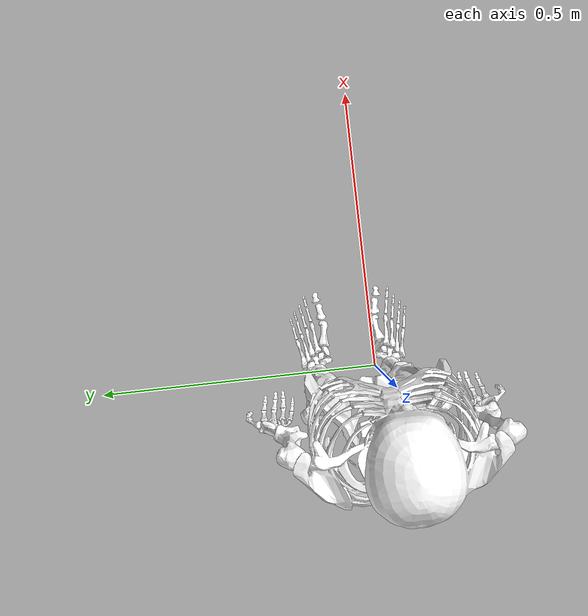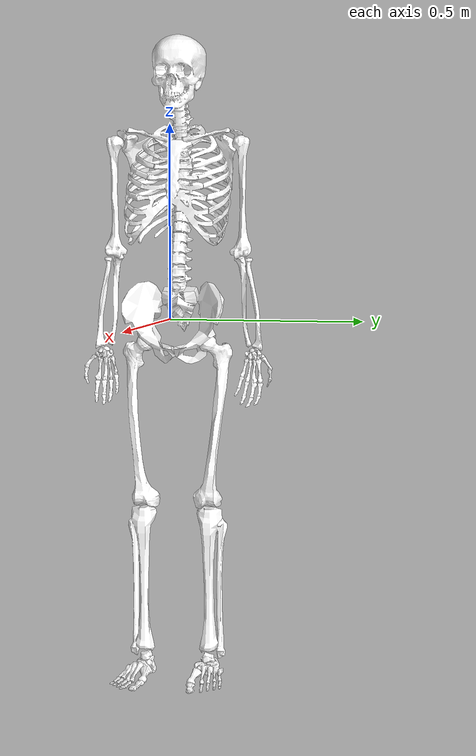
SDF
<?xml version="1.0"?>
<!-- created with Phobos 0.7 -->
<sdf version="1.5">
  <model name="human">
    <link name="calcn_l">
      <pose>-0.1239698529 0.0914200023 -0.9338706732 0 0 0</pose>
      <inertial>
        <mass>1.25</mass>
        <inertia>
          <ixx>0.0014</ixx>
          <ixy>0</ixy>
          <ixz>0</ixz>
          <iyy>0.0038999999</iyy>
          <iyz>0</iyz>
          <izz>0.0041</izz>
        </inertia>
        <pose>0 0 0 0 0 0</pose>
      </inertial>
      <collision name="calcn_l_collision">
        <pose>0 0 0 0 0 0</pose>
        <geometry>
          <mesh>
            <uri>../meshes/obj/Calcn L.001.obj</uri>
            <scale>1.0 1.0 1.0</scale>
          </mesh>
        </geometry>
      </collision>
      <visual name="calcn_l_visual">
        <pose>0.0 0.0 0.0 0.0 -0.0 0.0</pose>
        <material>
          <ambient>1.0 1.0 1.0 0</ambient>
          <diffuse>1.0 1.0 1.0 0</diffuse>
          <specular>0.5 0.5 0.5 1.0</specular>
        </material>
        <geometry>
          <mesh>
            <uri>../meshes/obj/Calcn L.obj</uri>
            <scale>1.0 1.0 1.0</scale>
          </mesh>
        </geometry>
      </visual>
    </link>
    <link name="calcn_r">
      <pose>-0.1239698529 -0.0914200023 -0.9338706732 0 0 0</pose>
      <inertial>
        <mass>1.25</mass>
        <inertia>
          <ixx>0.0014</ixx>
          <ixy>0</ixy>
          <ixz>0</ixz>
          <iyy>0.0038999999</iyy>
          <iyz>0</iyz>
          <izz>0.0041</izz>
        </inertia>
        <pose>0 0 0 0 0 0</pose>
      </inertial>
      <collision name="calcn_r_collision">
        <pose>0 0 0 0 0 0</pose>
        <geometry>
          <mesh>
            <uri>../meshes/obj/Calcn R.001.obj</uri>
            <scale>1.0 1.0 1.0</scale>
          </mesh>
        </geometry>
      </collision>
      <visual name="calcn_r_visual">
        <pose>0.0 0.0 0.0 0.0 -0.0 0.0</pose>
        <material>
          <ambient>1.0 1.0 1.0 0</ambient>
          <diffuse>1.0 1.0 1.0 0</diffuse>
          <specular>0.5 0.5 0.5 1.0</specular>
        </material>
        <geometry>
          <mesh>
            <uri>../meshes/obj/Calcn R.obj</uri>
            <scale>1.0 1.0 1.0</scale>
          </mesh>
        </geometry>
      </visual>
    </link>
    <link name="femur_l">
      <pose>-0.0706999972 0.0834999979 -0.0661000013 0 0 0</pose>
      <inertial>
        <mass>9.3014</mass>
        <inertia>
          <ixx>0.1339000016</ixx>
          <ixy>0</ixy>
          <ixz>0</ixz>
          <iyy>0.0351000018</iyy>
          <iyz>0</iyz>
          <izz>0.141200006</izz>
        </inertia>
        <pose>0 0 0 0 0 0</pose>
      </inertial>
      <collision name="femur_l_collision">
        <pose>0 0 0 0 0 0</pose>
        <geometry>
          <mesh>
            <uri>../meshes/obj/Femur L.001.obj</uri>
            <scale>1.0 1.0 1.0</scale>
          </mesh>
        </geometry>
      </collision>
      <visual name="femur_l_visual">
        <pose>0.0 0.0 0.0 0.0 -0.0 0.0</pose>
        <material>
          <ambient>1.0 1.0 1.0 0</ambient>
          <diffuse>1.0 1.0 1.0 0</diffuse>
          <specular>0.5 0.5 0.5 1.0</specular>
        </material>
        <geometry>
          <mesh>
            <uri>../meshes/obj/Femur L.obj</uri>
            <scale>1.0 1.0 1.0</scale>
          </mesh>
        </geometry>
      </visual>
    </link>
    <link name="femur_r">
      <pose>-0.0706999972 -0.0834999979 -0.0661000013 0 0 0</pose>
      <inertial>
        <mass>9.3014</mass>
        <inertia>
          <ixx>0.1339000016</ixx>
          <ixy>0</ixy>
          <ixz>0</ixz>
          <iyy>0.0351000018</iyy>
          <iyz>0</iyz>
          <izz>0.141200006</izz>
        </inertia>
        <pose>0 0 0 0 0 0</pose>
      </inertial>
      <collision name="femur_r_collision">
        <pose>0 0 0 0 0 0</pose>
        <geometry>
          <mesh>
            <uri>../meshes/obj/Femur R.001.obj</uri>
            <scale>1.0 1.0 1.0</scale>
          </mesh>
        </geometry>
      </collision>
      <visual name="femur_r_visual">
        <pose>0.0 0.0 0.0 0.0 -0.0 0.0</pose>
        <material>
          <ambient>1.0 1.0 1.0 0</ambient>
          <diffuse>1.0 1.0 1.0 0</diffuse>
          <specular>0.5 0.5 0.5 1.0</specular>
        </material>
        <geometry>
          <mesh>
            <uri>../meshes/obj/Femur R.obj</uri>
            <scale>1.0 1.0 1.0</scale>
          </mesh>
        </geometry>
      </visual>
    </link>
    <link name="hand_l">
      <pose>-0.0999249965 0.200097993 -0.0821209997 0 0 0</pose>
      <inertial>
        <mass>0.4575</mass>
        <inertia>
          <ixx>0.000892</ixx>
          <ixy>0</ixy>
          <ixz>0</ixz>
          <iyy>0.000547</iyy>
          <iyz>0</iyz>
          <izz>0.00134</izz>
        </inertia>
        <pose>0 0 0 0 0 0</pose>
      </inertial>
      <collision name="hand_l_collision">
        <pose>0 0 0 0 0 0</pose>
        <geometry>
          <mesh>
            <uri>../meshes/obj/Hand L.001.obj</uri>
            <scale>1.0 1.0 1.0</scale>
          </mesh>
        </geometry>
      </collision>
      <visual name="hand_l_visual">
        <pose>0.0 0.0 0.0 0.0 -0.0 0.0</pose>
        <material>
          <ambient>1.0 1.0 1.0 0</ambient>
          <diffuse>1.0 1.0 1.0 0</diffuse>
          <specular>0.5 0.5 0.5 1.0</specular>
        </material>
        <geometry>
          <mesh>
            <uri>../meshes/obj/Hand L.obj</uri>
            <scale>1.0 1.0 1.0</scale>
          </mesh>
        </geometry>
      </visual>
    </link>
    <link name="hand_r">
      <pose>-0.0999249965 -0.200097993 -0.0821209997 0 0 0</pose>
      <inertial>
        <mass>0.4575</mass>
        <inertia>
          <ixx>0.000892</ixx>
          <ixy>0</ixy>
          <ixz>0</ixz>
          <iyy>0.000547</iyy>
          <iyz>0</iyz>
          <izz>0.00134</izz>
        </inertia>
        <pose>0 0 0 0 0 0</pose>
      </inertial>
      <collision name="hand_r_collision">
        <pose>0 0 0 0 0 0</pose>
        <geometry>
          <mesh>
            <uri>../meshes/obj/Hand R.001.obj</uri>
            <scale>1.0 1.0 1.0</scale>
          </mesh>
        </geometry>
      </collision>
      <visual name="hand_r_visual">
        <pose>0.0 0.0 0.0 0.0 -0.0 0.0</pose>
        <material>
          <ambient>1.0 1.0 1.0 0</ambient>
          <diffuse>1.0 1.0 1.0 0</diffuse>
          <specular>0.5 0.5 0.5 1.0</specular>
        </material>
        <geometry>
          <mesh>
            <uri>../meshes/obj/Hand R.obj</uri>
            <scale>1.0 1.0 1.0</scale>
          </mesh>
        </geometry>
      </visual>
    </link>
    <link name="humerus_l">
      <pose>-0.0975449979 0.1700000018 0.4530000091 0 0 0</pose>
      <inertial>
        <mass>2.0325</mass>
        <inertia>
          <ixx>0.0119460002</ixx>
          <ixy>0</ixy>
          <ixz>0</ixz>
          <iyy>0.0041209999</iyy>
          <iyz>0</iyz>
          <izz>0.0134089999</izz>
        </inertia>
        <pose>0 0 0 0 0 0</pose>
      </inertial>
      <collision name="humerus_l_collision">
        <pose>0 0 0 0 0 0</pose>
        <geometry>
          <mesh>
            <uri>../meshes/obj/Humerus L.001.obj</uri>
            <scale>1.0 1.0 1.0</scale>
          </mesh>
        </geometry>
      </collision>
      <visual name="humerus_l_visual">
        <pose>0.0 0.0 0.0 0.0 -0.0 0.0</pose>
        <material>
          <ambient>1.0 1.0 1.0 0</ambient>
          <diffuse>1.0 1.0 1.0 0</diffuse>
          <specular>0.5 0.5 0.5 1.0</specular>
        </material>
        <geometry>
          <mesh>
            <uri>../meshes/obj/Humerus L.obj</uri>
            <scale>1.0 1.0 1.0</scale>
          </mesh>
        </geometry>
      </visual>
    </link>
    <link name="humerus_r">
      <pose>-0.0975449979 -0.1700000018 0.4530000091 0 0 0</pose>
      <inertial>
        <mass>2.0325</mass>
        <inertia>
          <ixx>0.0119460002</ixx>
          <ixy>0</ixy>
          <ixz>0</ixz>
          <iyy>0.0041209999</iyy>
          <iyz>0</iyz>
          <izz>0.0134089999</izz>
        </inertia>
        <pose>0 0 0 0 0 0</pose>
      </inertial>
      <collision name="humerus_r_collision">
        <pose>0 0 0 0 0 0</pose>
        <geometry>
          <mesh>
            <uri>../meshes/obj/Humerus R.001.obj</uri>
            <scale>1.0 1.0 1.0</scale>
          </mesh>
        </geometry>
      </collision>
      <visual name="humerus_r_visual">
        <pose>0.0 0.0 0.0 0.0 -0.0 0.0</pose>
        <material>
          <ambient>1.0 1.0 1.0 0</ambient>
          <diffuse>1.0 1.0 1.0 0</diffuse>
          <specular>0.5 0.5 0.5 1.0</specular>
        </material>
        <geometry>
          <mesh>
            <uri>../meshes/obj/Humerus R.obj</uri>
            <scale>1.0 1.0 1.0</scale>
          </mesh>
        </geometry>
      </visual>
    </link>
    <link name="pelvis">
      <pose>0 0 0 0 0 0</pose>
      <inertial>
        <mass>11.777</mass>
        <inertia>
          <ixx>0.1027999967</ixx>
          <ixy>0</ixy>
          <ixz>0</ixz>
          <iyy>0.0870999992</iyy>
          <iyz>0</iyz>
          <izz>0.0579000004</izz>
        </inertia>
        <pose>0 0 0 0 0 0</pose>
      </inertial>
      <collision name="pelvis_collision">
        <pose>0 0 0 0 0 0</pose>
        <geometry>
          <mesh>
            <uri>../meshes/obj/Pelvis.001.obj</uri>
            <scale>1.0 1.0 1.0</scale>
          </mesh>
        </geometry>
      </collision>
      <visual name="pelvis_visual">
        <pose>0.0 0.0 0.0 0.0 -0.0 0.0</pose>
        <material>
          <ambient>1.0 1.0 1.0 0</ambient>
          <diffuse>1.0 1.0 1.0 0</diffuse>
          <specular>0.5 0.5 0.5 1.0</specular>
        </material>
        <geometry>
          <mesh>
            <uri>../meshes/obj/Pelvis.obj</uri>
            <scale>1.0 1.0 1.0</scale>
          </mesh>
        </geometry>
      </visual>
    </link>
    <link name="radius_l">
      <pose>-0.0911279991 0.1864880025 0.1537200063 0 0 0</pose>
      <inertial>
        <mass>0.6075</mass>
        <inertia>
          <ixx>0.002962</ixx>
          <ixy>0</ixy>
          <ixz>0</ixz>
          <iyy>0.000618</iyy>
          <iyz>0</iyz>
          <izz>0.003213</izz>
        </inertia>
        <pose>0 0 0 0 0 0</pose>
      </inertial>
      <collision name="radius_l_collision">
        <pose>0 0 0 0 0 0</pose>
        <geometry>
          <mesh>
            <uri>../meshes/obj/Radius L.001.obj</uri>
            <scale>1.0 1.0 1.0</scale>
          </mesh>
        </geometry>
      </collision>
      <visual name="radius_l_visual">
        <pose>0.0 0.0 0.0 0.0 -0.0 0.0</pose>
        <material>
          <ambient>1.0 1.0 1.0 0</ambient>
          <diffuse>1.0 1.0 1.0 0</diffuse>
          <specular>0.5 0.5 0.5 1.0</specular>
        </material>
        <geometry>
          <mesh>
            <uri>../meshes/obj/Radius L.obj</uri>
            <scale>1.0 1.0 1.0</scale>
          </mesh>
        </geometry>
      </visual>
    </link>
    <link name="radius_r">
      <pose>-0.0911279991 -0.1864880025 0.1537200063 0 0 0</pose>
      <inertial>
        <mass>0.6075</mass>
        <inertia>
          <ixx>0.002962</ixx>
          <ixy>0</ixy>
          <ixz>0</ixz>
          <iyy>0.000618</iyy>
          <iyz>0</iyz>
          <izz>0.003213</izz>
        </inertia>
        <pose>0 0 0 0 0 0</pose>
      </inertial>
      <collision name="radius_r_collision">
        <pose>0 0 0 0 0 0</pose>
        <geometry>
          <mesh>
            <uri>../meshes/obj/Radius R.001.obj</uri>
            <scale>1.0 1.0 1.0</scale>
          </mesh>
        </geometry>
      </collision>
      <visual name="radius_r_visual">
        <pose>0.0 0.0 0.0 0.0 -0.0 0.0</pose>
        <material>
          <ambient>1.0 1.0 1.0 0</ambient>
          <diffuse>1.0 1.0 1.0 0</diffuse>
          <specular>0.5 0.5 0.5 1.0</specular>
        </material>
        <geometry>
          <mesh>
            <uri>../meshes/obj/Radius R.obj</uri>
            <scale>1.0 1.0 1.0</scale>
          </mesh>
        </geometry>
      </visual>
    </link>
    <link name="talus_l">
      <pose>-0.0751998574 0.0834999979 -0.8919206858 0 0 0</pose>
      <inertial>
        <mass>0.1</mass>
        <inertia>
          <ixx>0.001</ixx>
          <ixy>0</ixy>
          <ixz>0</ixz>
          <iyy>0.001</iyy>
          <iyz>0</iyz>
          <izz>0.001</izz>
        </inertia>
        <pose>0 0 0 0 0 0</pose>
      </inertial>
      <collision name="talus_l_collision">
        <pose>0 0 0 0 0 0</pose>
        <geometry>
          <mesh>
            <uri>../meshes/obj/Talus L.001.obj</uri>
            <scale>1.0 1.0 1.0</scale>
          </mesh>
        </geometry>
      </collision>
      <visual name="talus_l_visual">
        <pose>0.0 0.0 0.0 0.0 -0.0 0.0</pose>
        <material>
          <ambient>1.0 1.0 1.0 0</ambient>
          <diffuse>1.0 1.0 1.0 0</diffuse>
          <specular>0.5 0.5 0.5 1.0</specular>
        </material>
        <geometry>
          <mesh>
            <uri>../meshes/obj/Talus L.obj</uri>
            <scale>1.0 1.0 1.0</scale>
          </mesh>
        </geometry>
      </visual>
    </link>
    <link name="talus_r">
      <pose>-0.0751998574 -0.0834999979 -0.8919206858 0 0 0</pose>
      <inertial>
        <mass>0.1</mass>
        <inertia>
          <ixx>0.001</ixx>
          <ixy>0</ixy>
          <ixz>0</ixz>
          <iyy>0.001</iyy>
          <iyz>0</iyz>
          <izz>0.001</izz>
        </inertia>
        <pose>0 0 0 0 0 0</pose>
      </inertial>
      <collision name="talus_r_collision">
        <pose>0 0 0 0 0 0</pose>
        <geometry>
          <mesh>
            <uri>../meshes/obj/Talus R.001.obj</uri>
            <scale>1.0 1.0 1.0</scale>
          </mesh>
        </geometry>
      </collision>
      <visual name="talus_r_visual">
        <pose>0.0 0.0 0.0 0.0 -0.0 0.0</pose>
        <material>
          <ambient>1.0 1.0 1.0 0</ambient>
          <diffuse>1.0 1.0 1.0 0</diffuse>
          <specular>0.5 0.5 0.5 1.0</specular>
        </material>
        <geometry>
          <mesh>
            <uri>../meshes/obj/Talus R.obj</uri>
            <scale>1.0 1.0 1.0</scale>
          </mesh>
        </geometry>
      </visual>
    </link>
    <link name="tibia_l">
      <pose>-0.0751998574 0.0834999979 -0.4619207084 0 0 0</pose>
      <inertial>
        <mass>3.7075</mass>
        <inertia>
          <ixx>0.0504000001</ixx>
          <ixy>0</ixy>
          <ixz>0</ixz>
          <iyy>0.0051000002</iyy>
          <iyz>0</iyz>
          <izz>0.0511000007</izz>
        </inertia>
        <pose>0 0 0 0 0 0</pose>
      </inertial>
      <collision name="tibia_l_collision">
        <pose>0 0 0 0 0 0</pose>
        <geometry>
          <mesh>
            <uri>../meshes/obj/Tibia L.001.obj</uri>
            <scale>1.0 1.0 1.0</scale>
          </mesh>
        </geometry>
      </collision>
      <visual name="tibia_l_visual">
        <pose>0.0 0.0 0.0 0.0 -0.0 0.0</pose>
        <material>
          <ambient>1.0 1.0 1.0 0</ambient>
          <diffuse>1.0 1.0 1.0 0</diffuse>
          <specular>0.5 0.5 0.5 1.0</specular>
        </material>
        <geometry>
          <mesh>
            <uri>../meshes/obj/Tibia L.obj</uri>
            <scale>1.0 1.0 1.0</scale>
          </mesh>
        </geometry>
      </visual>
    </link>
    <link name="tibia_r">
      <pose>-0.0751998574 -0.0834999979 -0.4619207084 0 0 0</pose>
      <inertial>
        <mass>3.7075</mass>
        <inertia>
          <ixx>0.0504000001</ixx>
          <ixy>0</ixy>
          <ixz>0</ixz>
          <iyy>0.0051000002</iyy>
          <iyz>0</iyz>
          <izz>0.0511000007</izz>
        </inertia>
        <pose>0 0 0 0 0 0</pose>
      </inertial>
      <collision name="tibia_r_collision">
        <pose>0 0 0 0 0 0</pose>
        <geometry>
          <mesh>
            <uri>../meshes/obj/Tibia R.001.obj</uri>
            <scale>1.0 1.0 1.0</scale>
          </mesh>
        </geometry>
      </collision>
      <visual name="tibia_r_visual">
        <pose>0.0 0.0 0.0 0.0 -0.0 0.0</pose>
        <material>
          <ambient>1.0 1.0 1.0 0</ambient>
          <diffuse>1.0 1.0 1.0 0</diffuse>
          <specular>0.5 0.5 0.5 1.0</specular>
        </material>
        <geometry>
          <mesh>
            <uri>../meshes/obj/Tibia R.obj</uri>
            <scale>1.0 1.0 1.0</scale>
          </mesh>
        </geometry>
      </visual>
    </link>
    <link name="toes_l">
      <pose>0.0548301488 0.0925000012 -0.935870707 0 0 0</pose>
      <inertial>
        <mass>0.2166</mass>
        <inertia>
          <ixx>0.0001</ixx>
          <ixy>0</ixy>
          <ixz>0</ixz>
          <iyy>0.0002</iyy>
          <iyz>0</iyz>
          <izz>0.001</izz>
        </inertia>
        <pose>0 0 0 0 0 0</pose>
      </inertial>
      <collision name="toes_l_collision">
        <pose>0 0 0 0 0 0</pose>
        <geometry>
          <mesh>
            <uri>../meshes/obj/Toes L.001.obj</uri>
            <scale>1.0 1.0 1.0</scale>
          </mesh>
        </geometry>
      </collision>
      <visual name="toes_l_visual">
        <pose>0.0 0.0 0.0 0.0 -0.0 0.0</pose>
        <material>
          <ambient>1.0 1.0 1.0 0</ambient>
          <diffuse>1.0 1.0 1.0 0</diffuse>
          <specular>0.5 0.5 0.5 1.0</specular>
        </material>
        <geometry>
          <mesh>
            <uri>../meshes/obj/Toes L.obj</uri>
            <scale>1.0 1.0 1.0</scale>
          </mesh>
        </geometry>
      </visual>
    </link>
    <link name="toes_r">
      <pose>0.0548301488 -0.0925000012 -0.935870707 0 0 0</pose>
      <inertial>
        <mass>0.2166</mass>
        <inertia>
          <ixx>0.0001</ixx>
          <ixy>0</ixy>
          <ixz>0</ixz>
          <iyy>0.0002</iyy>
          <iyz>0</iyz>
          <izz>0.001</izz>
        </inertia>
        <pose>0 0 0 0 0 0</pose>
      </inertial>
      <collision name="toes_r_collision">
        <pose>0 0 0 0 0 0</pose>
        <geometry>
          <mesh>
            <uri>../meshes/obj/Toes R.001.obj</uri>
            <scale>1.0 1.0 1.0</scale>
          </mesh>
        </geometry>
      </collision>
      <visual name="toes_r_visual">
        <pose>0.0 0.0 0.0 0.0 -0.0 0.0</pose>
        <material>
          <ambient>1.0 1.0 1.0 0</ambient>
          <diffuse>1.0 1.0 1.0 0</diffuse>
          <specular>0.5 0.5 0.5 1.0</specular>
        </material>
        <geometry>
          <mesh>
            <uri>../meshes/obj/Toes R.obj</uri>
            <scale>1.0 1.0 1.0</scale>
          </mesh>
        </geometry>
      </visual>
    </link>
    <link name="torso">
      <pose>-0.1006999984 0 0.0815000013 0 0 0</pose>
      <inertial>
        <mass>26.8266</mass>
        <inertia>
          <ixx>1.4744999409</ixx>
          <ixy>0</ixy>
          <ixz>0</ixz>
          <iyy>0.7555000186</iyy>
          <iyz>0</iyz>
          <izz>1.4313999414</izz>
        </inertia>
        <pose>0 0 0 0 0 0</pose>
      </inertial>
      <collision name="torso_collision">
        <pose>0 0 0 0 0 0</pose>
        <geometry>
          <mesh>
            <uri>../meshes/obj/Torso.001.obj</uri>
            <scale>1.0 1.0 1.0</scale>
          </mesh>
        </geometry>
      </collision>
      <visual name="torso_visual">
        <pose>0.0 0.0 0.0 0.0 -0.0 0.0</pose>
        <material>
          <ambient>1.0 1.0 1.0 0</ambient>
          <diffuse>1.0 1.0 1.0 0</diffuse>
          <specular>0.5 0.5 0.5 1.0</specular>
        </material>
        <geometry>
          <mesh>
            <uri>../meshes/obj/Torso.obj</uri>
            <scale>1.0 1.0 1.0</scale>
          </mesh>
        </geometry>
      </visual>
    </link>
    <link name="ulna_l">
      <pose>-0.0844009966 0.1604049951 0.1667270064 0 0 0</pose>
      <inertial>
        <mass>0.6075</mass>
        <inertia>
          <ixx>0.002962</ixx>
          <ixy>0</ixy>
          <ixz>0</ixz>
          <iyy>0.000618</iyy>
          <iyz>0</iyz>
          <izz>0.003213</izz>
        </inertia>
        <pose>0 0 0 0 0 0</pose>
      </inertial>
      <collision name="ulna_l_collision">
        <pose>0 0 0 0 0 0</pose>
        <geometry>
          <mesh>
            <uri>../meshes/obj/Ulna L.001.obj</uri>
            <scale>1.0 1.0 1.0</scale>
          </mesh>
        </geometry>
      </collision>
      <visual name="ulna_l_visual">
        <pose>0.0 0.0 0.0 0.0 -0.0 0.0</pose>
        <material>
          <ambient>1.0 1.0 1.0 0</ambient>
          <diffuse>1.0 1.0 1.0 0</diffuse>
          <specular>0.5 0.5 0.5 1.0</specular>
        </material>
        <geometry>
          <mesh>
            <uri>../meshes/obj/Ulna L.obj</uri>
            <scale>1.0 1.0 1.0</scale>
          </mesh>
        </geometry>
      </visual>
    </link>
    <link name="ulna_r">
      <pose>-0.0844009966 -0.1604049951 0.1667270064 0 0 0</pose>
      <inertial>
        <mass>0.6075</mass>
        <inertia>
          <ixx>0.002962</ixx>
          <ixy>0</ixy>
          <ixz>0</ixz>
          <iyy>0.000618</iyy>
          <iyz>0</iyz>
          <izz>0.003213</izz>
        </inertia>
        <pose>0 0 0 0 0 0</pose>
      </inertial>
      <collision name="ulna_r_collision">
        <pose>0 0 0 0 0 0</pose>
        <geometry>
          <mesh>
            <uri>../meshes/obj/Ulna R.001.obj</uri>
            <scale>1.0 1.0 1.0</scale>
          </mesh>
        </geometry>
      </collision>
      <visual name="ulna_r_visual">
        <pose>0.0 0.0 0.0 0.0 -0.0 0.0</pose>
        <material>
          <ambient>1.0 1.0 1.0 0</ambient>
          <diffuse>1.0 1.0 1.0 0</diffuse>
          <specular>0.5 0.5 0.5 1.0</specular>
        </material>
        <geometry>
          <mesh>
            <uri>../meshes/obj/Ulna R.obj</uri>
            <scale>1.0 1.0 1.0</scale>
          </mesh>
        </geometry>
      </visual>
    </link>
    <joint name="joint_calcn_l" type="revolute">
      <parent>talus_l</parent>
      <child>calcn_l</child>
      <pose>0.0 0.0 0.0 0.0 0.0 0.0</pose>
      <axis>
        <xyz>0 1.0 0</xyz>
        <limit>
          <lower>-3.141592741</lower>
          <upper>3.141592741</upper>
          <effort>10000000000.0</effort>
          <velocity>628.318530718</velocity>
        </limit>
      </axis>
    </joint>
    <joint name="joint_calcn_r" type="revolute">
      <parent>talus_r</parent>
      <child>calcn_r</child>
      <pose>0.0 0.0 0.0 0.0 0.0 0.0</pose>
      <axis>
        <xyz>0 -1.0 0</xyz>
        <limit>
          <lower>-3.141592741</lower>
          <upper>3.141592741</upper>
          <effort>10000000000.0</effort>
          <velocity>628.318530718</velocity>
        </limit>
      </axis>
    </joint>
    <joint name="joint_femur_l" type="revolute">
      <parent>pelvis</parent>
      <child>femur_l</child>
      <pose>0.0 0.0 0.0 0.0 0.0 0.0</pose>
      <axis>
        <xyz>0 1.0 0</xyz>
        <limit>
          <lower>-3.141592741</lower>
          <upper>3.141592741</upper>
          <effort>10000000000.0</effort>
          <velocity>628.318530718</velocity>
        </limit>
      </axis>
    </joint>
    <joint name="joint_femur_r" type="revolute">
      <parent>pelvis</parent>
      <child>femur_r</child>
      <pose>0.0 0.0 0.0 0.0 0.0 0.0</pose>
      <axis>
        <xyz>1.0 0 0</xyz>
        <limit>
          <lower>-3.141592741</lower>
          <upper>3.141592741</upper>
          <effort>10000000000.0</effort>
          <velocity>628.318530718</velocity>
        </limit>
      </axis>
    </joint>
    <joint name="joint_hand_l" type="revolute">
      <parent>radius_l</parent>
      <child>hand_l</child>
      <pose>0.0 0.0 0.0 0.0 0.0 0.0</pose>
      <axis>
        <xyz>0 1.0 0</xyz>
        <limit>
          <lower>-3.141592741</lower>
          <upper>3.141592741</upper>
          <effort>10000000000.0</effort>
          <velocity>628.318530718</velocity>
        </limit>
      </axis>
    </joint>
    <joint name="joint_hand_r" type="revolute">
      <parent>radius_r</parent>
      <child>hand_r</child>
      <pose>0.0 0.0 0.0 0.0 0.0 0.0</pose>
      <axis>
        <xyz>0 -1.0 0</xyz>
        <limit>
          <lower>-3.141592741</lower>
          <upper>3.141592741</upper>
          <effort>10000000000.0</effort>
          <velocity>628.318530718</velocity>
        </limit>
      </axis>
    </joint>
    <joint name="joint_humerus_l" type="revolute">
      <parent>torso</parent>
      <child>humerus_l</child>
      <pose>0.0 0.0 0.0 0.0 0.0 0.0</pose>
      <axis>
        <xyz>0 1.0 0</xyz>
        <limit>
          <lower>-3.141592741</lower>
          <upper>3.141592741</upper>
          <effort>10000000000.0</effort>
          <velocity>628.318530718</velocity>
        </limit>
      </axis>
    </joint>
    <joint name="joint_humerus_r" type="revolute">
      <parent>torso</parent>
      <child>humerus_r</child>
      <pose>0.0 0.0 0.0 0.0 0.0 0.0</pose>
      <axis>
        <xyz>0 -1.0 0</xyz>
        <limit>
          <lower>-3.141592741</lower>
          <upper>3.141592741</upper>
          <effort>10000000000.0</effort>
          <velocity>628.318530718</velocity>
        </limit>
      </axis>
    </joint>
    <joint name="joint_radius_l" type="revolute">
      <parent>ulna_l</parent>
      <child>radius_l</child>
      <pose>0.0 0.0 0.0 0.0 0.0 0.0</pose>
      <axis>
        <xyz>0 1.0 0</xyz>
        <limit>
          <lower>-3.141592741</lower>
          <upper>3.141592741</upper>
          <effort>10000000000.0</effort>
          <velocity>628.318530718</velocity>
        </limit>
      </axis>
    </joint>
    <joint name="joint_radius_r" type="revolute">
      <parent>ulna_r</parent>
      <child>radius_r</child>
      <pose>0.0 0.0 0.0 0.0 0.0 0.0</pose>
      <axis>
        <xyz>0 -1.0 0</xyz>
        <limit>
          <lower>-3.141592741</lower>
          <upper>3.141592741</upper>
          <effort>10000000000.0</effort>
          <velocity>628.318530718</velocity>
        </limit>
      </axis>
    </joint>
    <joint name="joint_talus_l" type="revolute">
      <parent>tibia_l</parent>
      <child>talus_l</child>
      <pose>0.0 0.0 0.0 0.0 0.0 0.0</pose>
      <axis>
        <xyz>0 1.0 0</xyz>
        <limit>
          <lower>-3.141592741</lower>
          <upper>3.141592741</upper>
          <effort>10000000000.0</effort>
          <velocity>628.318530718</velocity>
        </limit>
      </axis>
    </joint>
    <joint name="joint_talus_r" type="revolute">
      <parent>tibia_r</parent>
      <child>talus_r</child>
      <pose>0.0 0.0 0.0 0.0 0.0 0.0</pose>
      <axis>
        <xyz>0 -1.0 0</xyz>
        <limit>
          <lower>-3.141592741</lower>
          <upper>3.141592741</upper>
          <effort>10000000000.0</effort>
          <velocity>628.318530718</velocity>
        </limit>
      </axis>
    </joint>
    <joint name="joint_tibia_l" type="revolute">
      <parent>femur_l</parent>
      <child>tibia_l</child>
      <pose>0.0 0.0 0.0 0.0 0.0 0.0</pose>
      <axis>
        <xyz>0 1.0 0</xyz>
        <limit>
          <lower>-3.141592741</lower>
          <upper>3.141592741</upper>
          <effort>10000000000.0</effort>
          <velocity>628.318530718</velocity>
        </limit>
      </axis>
    </joint>
    <joint name="joint_tibia_r" type="revolute">
      <parent>femur_r</parent>
      <child>tibia_r</child>
      <pose>0.0 0.0 0.0 0.0 0.0 0.0</pose>
      <axis>
        <xyz>0 -1.0 0</xyz>
        <limit>
          <lower>-3.141592741</lower>
          <upper>3.141592741</upper>
          <effort>10000000000.0</effort>
          <velocity>628.318530718</velocity>
        </limit>
      </axis>
    </joint>
    <joint name="joint_toes_l" type="revolute">
      <parent>calcn_l</parent>
      <child>toes_l</child>
      <pose>0.0 0.0 0.0 0.0 0.0 0.0</pose>
      <axis>
        <xyz>0 1.0 0</xyz>
        <limit>
          <lower>-3.141592741</lower>
          <upper>3.141592741</upper>
          <effort>10000000000.0</effort>
          <velocity>628.318530718</velocity>
        </limit>
      </axis>
    </joint>
    <joint name="joint_toes_r" type="revolute">
      <parent>calcn_r</parent>
      <child>toes_r</child>
      <pose>0.0 0.0 0.0 0.0 0.0 0.0</pose>
      <axis>
        <xyz>0 -1.0 0</xyz>
        <limit>
          <lower>-3.141592741</lower>
          <upper>3.141592741</upper>
          <effort>10000000000.0</effort>
          <velocity>628.318530718</velocity>
        </limit>
      </axis>
    </joint>
    <joint name="joint_torso" type="revolute">
      <parent>pelvis</parent>
      <child>torso</child>
      <pose>0.0 0.0 0.0 0.0 0.0 0.0</pose>
      <axis>
        <xyz>0 1.0 0</xyz>
        <limit>
          <lower>-3.141592741</lower>
          <upper>3.141592741</upper>
          <effort>10000000000.0</effort>
          <velocity>628.318530718</velocity>
        </limit>
      </axis>
    </joint>
    <joint name="joint_ulna_l" type="revolute">
      <parent>humerus_l</parent>
      <child>ulna_l</child>
      <pose>0.0 0.0 0.0 0.0 0.0 0.0</pose>
      <axis>
        <xyz>0 1.0 0</xyz>
        <limit>
          <lower>-3.141592741</lower>
          <upper>3.141592741</upper>
          <effort>10000000000.0</effort>
          <velocity>628.318530718</velocity>
        </limit>
      </axis>
    </joint>
    <joint name="joint_ulna_r" type="revolute">
      <parent>humerus_r</parent>
      <child>ulna_r</child>
      <pose>0.0 0.0 0.0 0.0 0.0 0.0</pose>
      <axis>
        <xyz>0 -1.0 0</xyz>
        <limit>
          <lower>-3.141592741</lower>
          <upper>3.141592741</upper>
          <effort>10000000000.0</effort>
          <velocity>628.318530718</velocity>
        </limit>
      </axis>
    </joint>
  </model>
</sdf>
